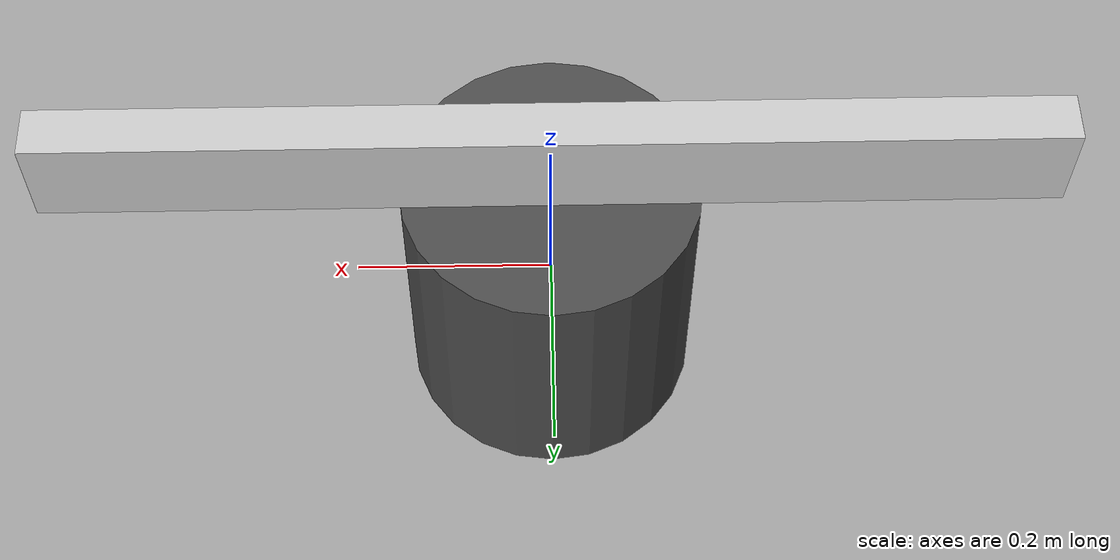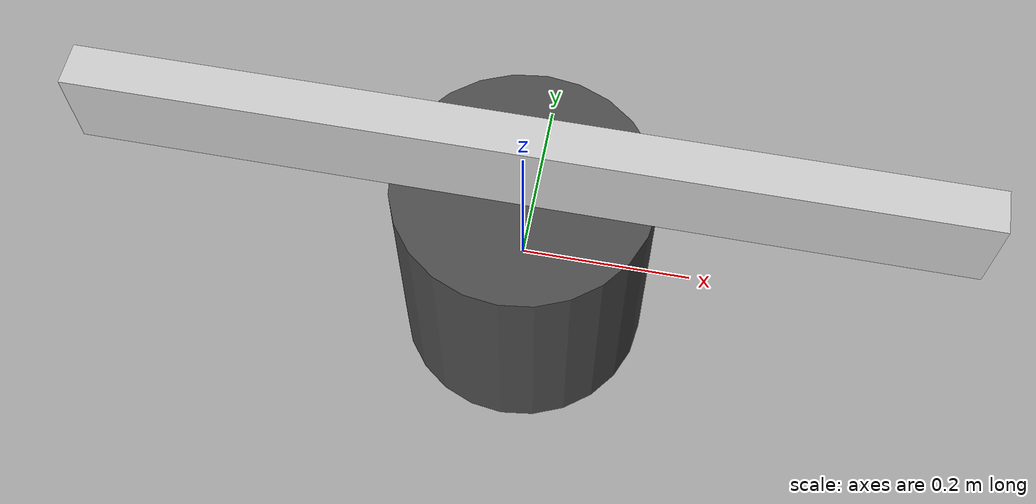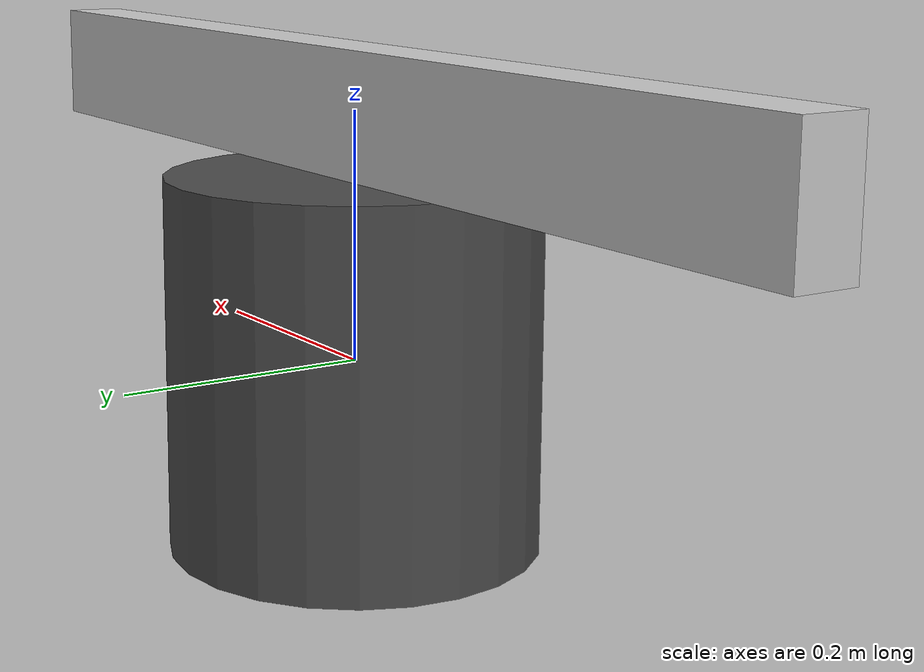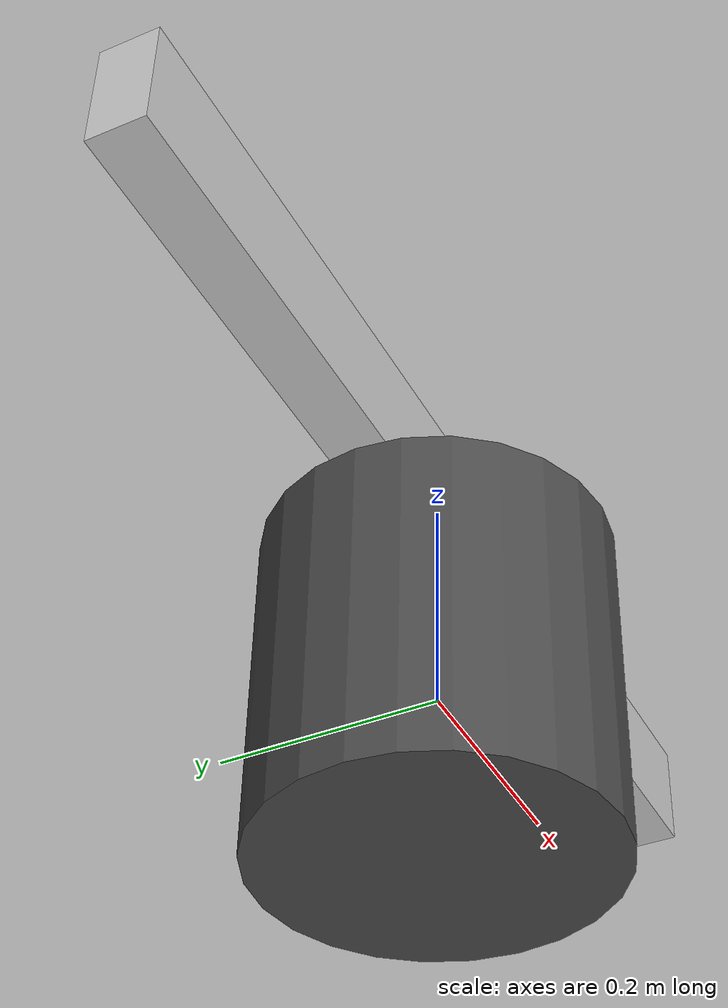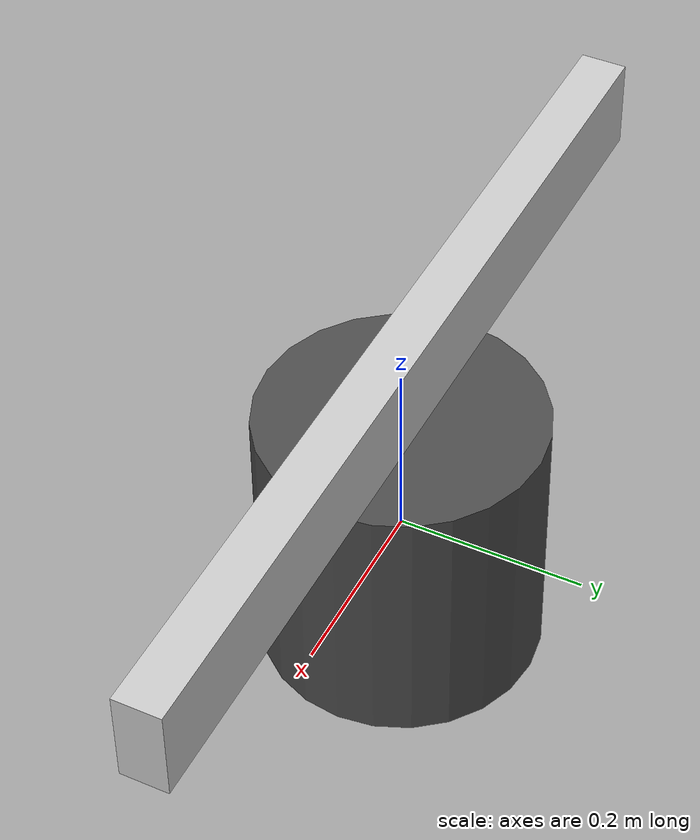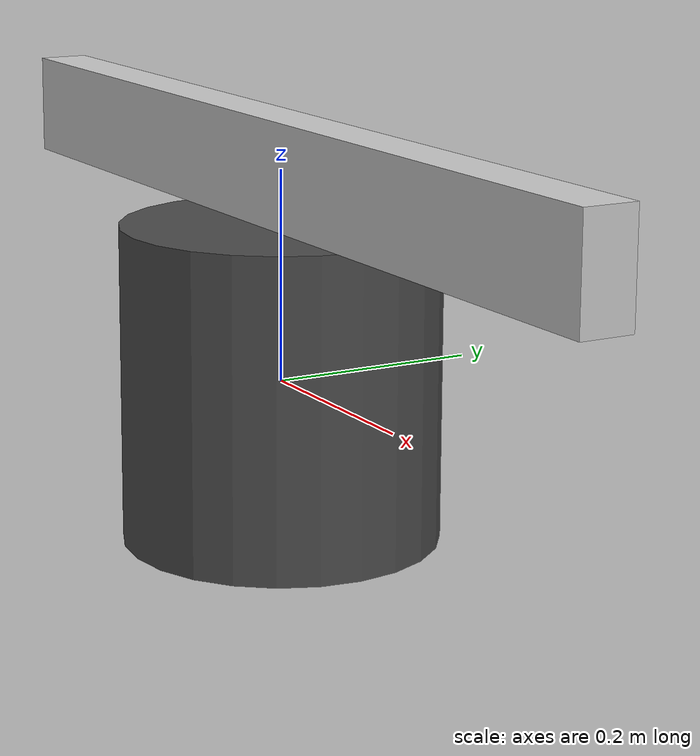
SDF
<?xml version="1.0"?>
<sdf version="1.9">
  <model name="maritime_radar">
    <static>false</static>

    <!-- 基座 (固定) -->
    <link name="base_link">
      <pose>0 0 0 0 0 0</pose>
      <inertial>
        <mass>5.0</mass>
        <inertia>
          <ixx>0.1</ixx><iyy>0.1</iyy><izz>0.1</izz>
        </inertia>
      </inertial>
      <visual name="base_visual">
        <geometry>
          <cylinder><radius>0.15</radius><length>0.3</length></cylinder>
        </geometry>
        <material>
          <ambient>0.3 0.3 0.3 1</ambient>
        </material>
      </visual>
      <collision name="base_collision">
        <geometry>
          <cylinder><radius>0.15</radius><length>0.3</length></cylinder>
        </geometry>
      </collision>
    </link>

    <!-- 天线 (旋转) -->
    <link name="antenna_link">
      <pose>0 0 0.2 0 0 0</pose>
      <inertial>
        <mass>2.0</mass>
        <inertia>
          <ixx>0.05</ixx><iyy>0.2</iyy><izz>0.2</izz>
        </inertia>
      </inertial>
      <visual name="antenna_visual">
        <geometry>
          <box><size>1.0 0.05 0.1</size></box>
        </geometry>
        <material>
          <ambient>0.8 0.8 0.8 1</ambient>
        </material>
      </visual>

      <!-- GPU LiDAR 传感器 -->
      <sensor name="radar_lidar" type="gpu_lidar">
        <pose>0 0 0 0 0 0</pose>
        <topic>/maritime_radar/lidar</topic>
        <update_rate>250</update_rate>
        <always_on>true</always_on>
        <visualize>false</visualize>
        <ray>
          <scan>
            <horizontal>
              <samples>1</samples>
              <resolution>1</resolution>
              <min_angle>0</min_angle>
              <max_angle>0</max_angle>
            </horizontal>
            <vertical>
              <samples>256</samples>
              <resolution>1</resolution>
              <min_angle>-0.35</min_angle>
              <max_angle>0.1</max_angle>
            </vertical>
          </scan>
          <range>
            <min>1.0</min>
            <max>1500.0</max>
            <resolution>0.01</resolution>
          </range>
          <noise>
            <type>gaussian</type>
            <mean>0</mean>
            <stddev>0.01</stddev>
          </noise>
        </ray>
      </sensor>
    </link>

    <!-- 旋转关节 -->
    <joint name="antenna_joint" type="revolute">
      <parent>base_link</parent>
      <child>antenna_link</child>
      <axis>
        <xyz>0 0 1</xyz>
        <limit>
          <lower>-1e16</lower>
          <upper>1e16</upper>
        </limit>
      </axis>
    </joint>

    <!-- 关节控制器: 60 RPM = 6.283 rad/s -->
    <plugin filename="gz-sim-joint-controller-system"
            name="gz::sim::systems::JointController">
      <joint_name>antenna_joint</joint_name>
      <initial_velocity>6.283185</initial_velocity>
    </plugin>

    <!-- 海事雷达插件 -->
    <plugin filename="MaritimeRadarPlugin"
            name="maritime_radar">
      <joint_name>antenna_joint</joint_name>
      <lidar_topic>/maritime_radar/lidar</lidar_topic>
      <radar_topic>/maritime_radar/radar/spokes</radar_topic>
      <angular_resolution>0.0251327</angular_resolution>
      <linear_resolution>0.75</linear_resolution>
      <min_range>1.0</min_range>
      <max_range>1500.0</max_range>
    </plugin>

  </model>
</sdf>
